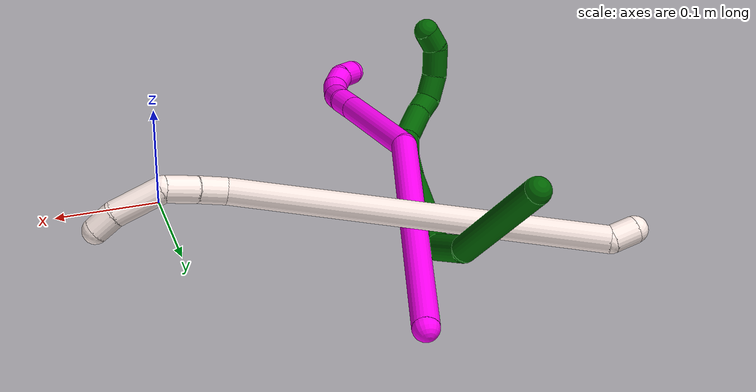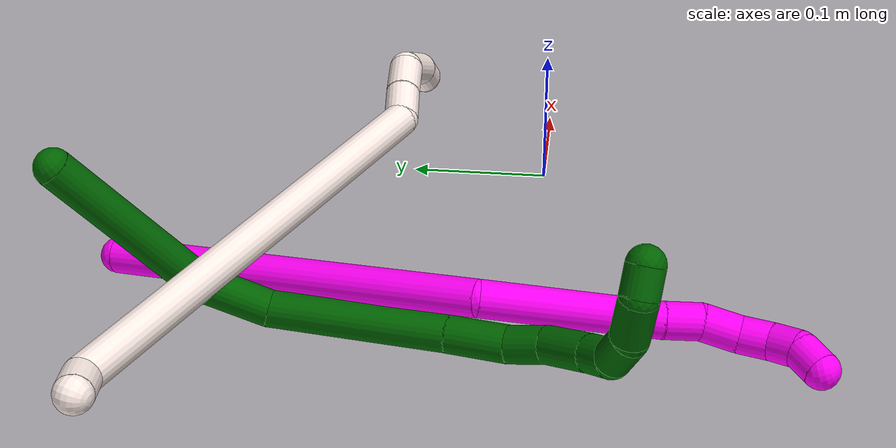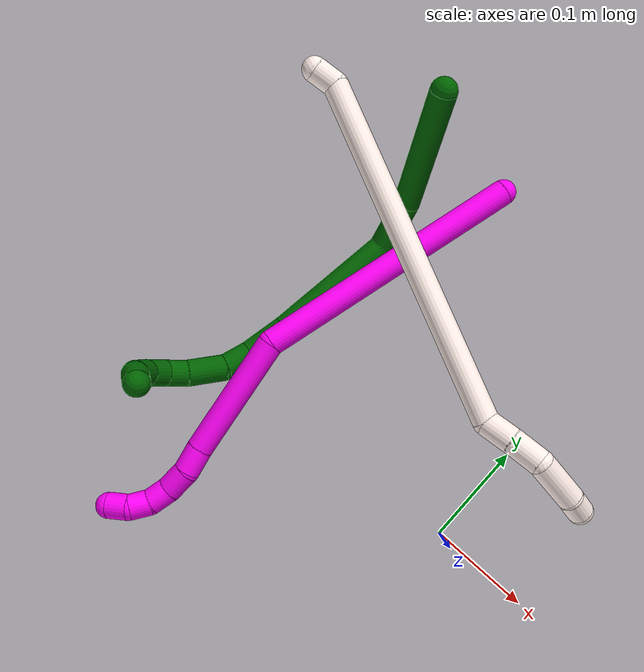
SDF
<sdf version="1.7">
 <world name="default">
  <model name="6">
   <static>0</static>
   <link name="6">
    <collision name="collision-cylinder-e_1_1_4">
     <pose>0.009903 -0.005653 -0.062704 3.05169 0.156016 2.09721</pose>
     <geometry><cylinder><radius>0.0125</radius><length>0.127464</length></cylinder></geometry>
     <surface>
      <friction><ode><mu>1.16</mu><mu2>1.16</mu2><slip1>0</slip1><slip2>0</slip2></ode></friction>
      <contact><ode><kp>1e+06</kp><kd>1</kd><max_vel>0</max_vel><min_depth>0.001</min_depth></ode></contact>
     </surface>
    </collision>
    <visual name="visual-cylinder-e_1_1_4">
     <pose>0.009903 -0.005653 -0.062704 3.05169 0.156016 2.09721</pose>
     <geometry><cylinder><radius>0.0125</radius><length>0.127464</length></cylinder></geometry>
     <material><ambient>0 0.392157 0.003922 1</ambient></material>
    </visual>
    <collision name="collision-cylinder-e_2_4_5">
     <pose>0.023388 -0.023616 -0.146737 2.61811 0.144441 0.527548</pose>
     <geometry><cylinder><radius>0.0125</radius><length>0.049773</length></cylinder></geometry>
     <surface>
      <friction><ode><mu>1.16</mu><mu2>1.16</mu2><slip1>0</slip1><slip2>0</slip2></ode></friction>
      <contact><ode><kp>1e+06</kp><kd>1</kd><max_vel>0</max_vel><min_depth>0.001</min_depth></ode></contact>
     </surface>
    </collision>
    <visual name="visual-cylinder-e_2_4_5">
     <pose>0.023388 -0.023616 -0.146737 2.61811 0.144441 0.527548</pose>
     <geometry><cylinder><radius>0.0125</radius><length>0.049773</length></cylinder></geometry>
     <material><ambient>0 0.392157 0.003922 1</ambient></material>
    </visual>
    <collision name="collision-cylinder-e_3_5_6">
     <pose>0.021951 -0.088953 -0.197711 2.08058 -0.082432 -0.140373</pose>
     <geometry><cylinder><radius>0.0125</radius><length>0.121913</length></cylinder></geometry>
     <surface>
      <friction><ode><mu>1.16</mu><mu2>1.16</mu2><slip1>0</slip1><slip2>0</slip2></ode></friction>
      <contact><ode><kp>1e+06</kp><kd>1</kd><max_vel>0</max_vel><min_depth>0.001</min_depth></ode></contact>
     </surface>
    </collision>
    <visual name="visual-cylinder-e_3_5_6">
     <pose>0.021951 -0.088953 -0.197711 2.08058 -0.082432 -0.140373</pose>
     <geometry><cylinder><radius>0.0125</radius><length>0.121913</length></cylinder></geometry>
     <material><ambient>0 0.392157 0.003922 1</ambient></material>
    </visual>
    <collision name="collision-cylinder-e_4_6_7">
     <pose>0.013961 -0.159894 -0.236774 2.0548 -0.145751 -0.240549</pose>
     <geometry><cylinder><radius>0.0125</radius><length>0.040915</length></cylinder></geometry>
     <surface>
      <friction><ode><mu>1.16</mu><mu2>1.16</mu2><slip1>0</slip1><slip2>0</slip2></ode></friction>
      <contact><ode><kp>1e+06</kp><kd>1</kd><max_vel>0</max_vel><min_depth>0.001</min_depth></ode></contact>
     </surface>
    </collision>
    <visual name="visual-cylinder-e_4_6_7">
     <pose>0.013961 -0.159894 -0.236774 2.0548 -0.145751 -0.240549</pose>
     <geometry><cylinder><radius>0.0125</radius><length>0.040915</length></cylinder></geometry>
     <material><ambient>0 0.392157 0.003922 1</ambient></material>
    </visual>
    <collision name="collision-cylinder-e_5_7_8">
     <pose>0.008433 -0.190715 -0.249016 1.78613 -0.191182 -0.237126</pose>
     <geometry><cylinder><radius>0.0125</radius><length>0.02691</length></cylinder></geometry>
     <surface>
      <friction><ode><mu>1.16</mu><mu2>1.16</mu2><slip1>0</slip1><slip2>0</slip2></ode></friction>
      <contact><ode><kp>1e+06</kp><kd>1</kd><max_vel>0</max_vel><min_depth>0.001</min_depth></ode></contact>
     </surface>
    </collision>
    <visual name="visual-cylinder-e_5_7_8">
     <pose>0.008433 -0.190715 -0.249016 1.78613 -0.191182 -0.237126</pose>
     <geometry><cylinder><radius>0.0125</radius><length>0.02691</length></cylinder></geometry>
     <material><ambient>0 0.392157 0.003922 1</ambient></material>
    </visual>
    <collision name="collision-cylinder-e_6_8_9">
     <pose>-0.003159 -0.219459 -0.252998 1.6439 -0.517231 -0.554577</pose>
     <geometry><cylinder><radius>0.0125</radius><length>0.036543</length></cylinder></geometry>
     <surface>
      <friction><ode><mu>1.16</mu><mu2>1.16</mu2><slip1>0</slip1><slip2>0</slip2></ode></friction>
      <contact><ode><kp>1e+06</kp><kd>1</kd><max_vel>0</max_vel><min_depth>0.001</min_depth></ode></contact>
     </surface>
    </collision>
    <visual name="visual-cylinder-e_6_8_9">
     <pose>-0.003159 -0.219459 -0.252998 1.6439 -0.517231 -0.554577</pose>
     <geometry><cylinder><radius>0.0125</radius><length>0.036543</length></cylinder></geometry>
     <material><ambient>0 0.392157 0.003922 1</ambient></material>
    </visual>
    <collision name="collision-cylinder-e_7_9_10">
     <pose>-0.018443 -0.243604 -0.253676 1.51281 -0.644256 -0.61021</pose>
     <geometry><cylinder><radius>0.0125</radius><length>0.020813</length></cylinder></geometry>
     <surface>
      <friction><ode><mu>1.16</mu><mu2>1.16</mu2><slip1>0</slip1><slip2>0</slip2></ode></friction>
      <contact><ode><kp>1e+06</kp><kd>1</kd><max_vel>0</max_vel><min_depth>0.001</min_depth></ode></contact>
     </surface>
    </collision>
    <visual name="visual-cylinder-e_7_9_10">
     <pose>-0.018443 -0.243604 -0.253676 1.51281 -0.644256 -0.61021</pose>
     <geometry><cylinder><radius>0.0125</radius><length>0.020813</length></cylinder></geometry>
     <material><ambient>0 0.392157 0.003922 1</ambient></material>
    </visual>
    <collision name="collision-cylinder-e_8_10_11">
     <pose>-0.027403 -0.262085 -0.245646 0.932558 -0.21072 -0.106348</pose>
     <geometry><cylinder><radius>0.0125</radius><length>0.02591</length></cylinder></geometry>
     <surface>
      <friction><ode><mu>1.16</mu><mu2>1.16</mu2><slip1>0</slip1><slip2>0</slip2></ode></friction>
      <contact><ode><kp>1e+06</kp><kd>1</kd><max_vel>0</max_vel><min_depth>0.001</min_depth></ode></contact>
     </surface>
    </collision>
    <visual name="visual-cylinder-e_8_10_11">
     <pose>-0.027403 -0.262085 -0.245646 0.932558 -0.21072 -0.106348</pose>
     <geometry><cylinder><radius>0.0125</radius><length>0.02591</length></cylinder></geometry>
     <material><ambient>0 0.392157 0.003922 1</ambient></material>
    </visual>
    <collision name="collision-cylinder-e_9_11_12">
     <pose>-0.02838 -0.281367 -0.226594 0.669667 0.117542 0.040938</pose>
     <geometry><cylinder><radius>0.0125</radius><length>0.02955</length></cylinder></geometry>
     <surface>
      <friction><ode><mu>1.16</mu><mu2>1.16</mu2><slip1>0</slip1><slip2>0</slip2></ode></friction>
      <contact><ode><kp>1e+06</kp><kd>1</kd><max_vel>0</max_vel><min_depth>0.001</min_depth></ode></contact>
     </surface>
    </collision>
    <visual name="visual-cylinder-e_9_11_12">
     <pose>-0.02838 -0.281367 -0.226594 0.669667 0.117542 0.040938</pose>
     <geometry><cylinder><radius>0.0125</radius><length>0.02955</length></cylinder></geometry>
     <material><ambient>0 0.392157 0.003922 1</ambient></material>
    </visual>
    <collision name="collision-cylinder-e_10_12_2">
     <pose>-0.020552 -0.295493 -0.208784 0.67205 0.647591 0.23337</pose>
     <geometry><cylinder><radius>0.0125</radius><length>0.020209</length></cylinder></geometry>
     <surface>
      <friction><ode><mu>1.16</mu><mu2>1.16</mu2><slip1>0</slip1><slip2>0</slip2></ode></friction>
      <contact><ode><kp>1e+06</kp><kd>1</kd><max_vel>0</max_vel><min_depth>0.001</min_depth></ode></contact>
     </surface>
    </collision>
    <visual name="visual-cylinder-e_10_12_2">
     <pose>-0.020552 -0.295493 -0.208784 0.67205 0.647591 0.23337</pose>
     <geometry><cylinder><radius>0.0125</radius><length>0.020209</length></cylinder></geometry>
     <material><ambient>0 0.392157 0.003922 1</ambient></material>
    </visual>
    <collision name="collision-sphere-2">
     <pose>-0.014456 -0.30051 -0.202477 0 -0 0</pose>
     <geometry><sphere><radius>0.0125</radius></sphere></geometry>
     <surface>
      <friction><ode><mu>1.16</mu><mu2>1.16</mu2><slip1>0</slip1><slip2>0</slip2></ode></friction>
      <contact><ode><kp>1e+06</kp><kd>1</kd><max_vel>0</max_vel><min_depth>0.001</min_depth></ode></contact>
     </surface>
    </collision>
    <visual name="visual-sphere-2">
     <pose>-0.014456 -0.30051 -0.202477 0 -0 0</pose>
     <geometry><sphere><radius>0.0125</radius></sphere></geometry>
     <material><ambient>0 0.392157 0.003922 1</ambient></material>
    </visual>
    <collision name="collision-sphere-12">
     <pose>-0.026647 -0.290475 -0.21509 0 -0 0</pose>
     <geometry><sphere><radius>0.0125</radius></sphere></geometry>
     <surface>
      <friction><ode><mu>1.16</mu><mu2>1.16</mu2><slip1>0</slip1><slip2>0</slip2></ode></friction>
      <contact><ode><kp>1e+06</kp><kd>1</kd><max_vel>0</max_vel><min_depth>0.001</min_depth></ode></contact>
     </surface>
    </collision>
    <visual name="visual-sphere-12">
     <pose>-0.026647 -0.290475 -0.21509 0 -0 0</pose>
     <geometry><sphere><radius>0.0125</radius></sphere></geometry>
     <material><ambient>0 0.392157 0.003922 1</ambient></material>
    </visual>
    <collision name="collision-sphere-11">
     <pose>-0.030113 -0.272259 -0.238099 0 -0 0</pose>
     <geometry><sphere><radius>0.0125</radius></sphere></geometry>
     <surface>
      <friction><ode><mu>1.16</mu><mu2>1.16</mu2><slip1>0</slip1><slip2>0</slip2></ode></friction>
      <contact><ode><kp>1e+06</kp><kd>1</kd><max_vel>0</max_vel><min_depth>0.001</min_depth></ode></contact>
     </surface>
    </collision>
    <visual name="visual-sphere-11">
     <pose>-0.030113 -0.272259 -0.238099 0 -0 0</pose>
     <geometry><sphere><radius>0.0125</radius></sphere></geometry>
     <material><ambient>0 0.392157 0.003922 1</ambient></material>
    </visual>
    <collision name="collision-sphere-10">
     <pose>-0.024694 -0.25191 -0.253194 0 -0 0</pose>
     <geometry><sphere><radius>0.0125</radius></sphere></geometry>
     <surface>
      <friction><ode><mu>1.16</mu><mu2>1.16</mu2><slip1>0</slip1><slip2>0</slip2></ode></friction>
      <contact><ode><kp>1e+06</kp><kd>1</kd><max_vel>0</max_vel><min_depth>0.001</min_depth></ode></contact>
     </surface>
    </collision>
    <visual name="visual-sphere-10">
     <pose>-0.024694 -0.25191 -0.253194 0 -0 0</pose>
     <geometry><sphere><radius>0.0125</radius></sphere></geometry>
     <material><ambient>0 0.392157 0.003922 1</ambient></material>
    </visual>
    <collision name="collision-sphere-9">
     <pose>-0.012193 -0.235298 -0.254158 0 -0 0</pose>
     <geometry><sphere><radius>0.0125</radius></sphere></geometry>
     <surface>
      <friction><ode><mu>1.16</mu><mu2>1.16</mu2><slip1>0</slip1><slip2>0</slip2></ode></friction>
      <contact><ode><kp>1e+06</kp><kd>1</kd><max_vel>0</max_vel><min_depth>0.001</min_depth></ode></contact>
     </surface>
    </collision>
    <visual name="visual-sphere-9">
     <pose>-0.012193 -0.235298 -0.254158 0 -0 0</pose>
     <geometry><sphere><radius>0.0125</radius></sphere></geometry>
     <material><ambient>0 0.392157 0.003922 1</ambient></material>
    </visual>
    <collision name="collision-sphere-4">
     <pose>0.019806 -0.011305 -0.125407 0 -0 0</pose>
     <geometry><sphere><radius>0.0125</radius></sphere></geometry>
     <surface>
      <friction><ode><mu>1.16</mu><mu2>1.16</mu2><slip1>0</slip1><slip2>0</slip2></ode></friction>
      <contact><ode><kp>1e+06</kp><kd>1</kd><max_vel>0</max_vel><min_depth>0.001</min_depth></ode></contact>
     </surface>
    </collision>
    <visual name="visual-sphere-4">
     <pose>0.019806 -0.011305 -0.125407 0 -0 0</pose>
     <geometry><sphere><radius>0.0125</radius></sphere></geometry>
     <material><ambient>0 0.392157 0.003922 1</ambient></material>
    </visual>
    <collision name="collision-sphere-1">
     <geometry><sphere><radius>0.0125</radius></sphere></geometry>
     <surface>
      <friction><ode><mu>1.16</mu><mu2>1.16</mu2><slip1>0</slip1><slip2>0</slip2></ode></friction>
      <contact><ode><kp>1e+06</kp><kd>1</kd><max_vel>0</max_vel><min_depth>0.001</min_depth></ode></contact>
     </surface>
    </collision>
    <visual name="visual-sphere-1">
     <geometry><sphere><radius>0.0125</radius></sphere></geometry>
     <material><ambient>0 0.392157 0.003922 1</ambient></material>
    </visual>
    <collision name="collision-sphere-8">
     <pose>0.005876 -0.20362 -0.251838 0 -0 0</pose>
     <geometry><sphere><radius>0.0125</radius></sphere></geometry>
     <surface>
      <friction><ode><mu>1.16</mu><mu2>1.16</mu2><slip1>0</slip1><slip2>0</slip2></ode></friction>
      <contact><ode><kp>1e+06</kp><kd>1</kd><max_vel>0</max_vel><min_depth>0.001</min_depth></ode></contact>
     </surface>
    </collision>
    <visual name="visual-sphere-8">
     <pose>0.005876 -0.20362 -0.251838 0 -0 0</pose>
     <geometry><sphere><radius>0.0125</radius></sphere></geometry>
     <material><ambient>0 0.392157 0.003922 1</ambient></material>
    </visual>
    <collision name="collision-sphere-5">
     <pose>0.02697 -0.035927 -0.168066 0 -0 0</pose>
     <geometry><sphere><radius>0.0125</radius></sphere></geometry>
     <surface>
      <friction><ode><mu>1.16</mu><mu2>1.16</mu2><slip1>0</slip1><slip2>0</slip2></ode></friction>
      <contact><ode><kp>1e+06</kp><kd>1</kd><max_vel>0</max_vel><min_depth>0.001</min_depth></ode></contact>
     </surface>
    </collision>
    <visual name="visual-sphere-5">
     <pose>0.02697 -0.035927 -0.168066 0 -0 0</pose>
     <geometry><sphere><radius>0.0125</radius></sphere></geometry>
     <material><ambient>0 0.392157 0.003922 1</ambient></material>
    </visual>
    <collision name="collision-sphere-6">
     <pose>0.016932 -0.141978 -0.227356 0 -0 0</pose>
     <geometry><sphere><radius>0.0125</radius></sphere></geometry>
     <surface>
      <friction><ode><mu>1.16</mu><mu2>1.16</mu2><slip1>0</slip1><slip2>0</slip2></ode></friction>
      <contact><ode><kp>1e+06</kp><kd>1</kd><max_vel>0</max_vel><min_depth>0.001</min_depth></ode></contact>
     </surface>
    </collision>
    <visual name="visual-sphere-6">
     <pose>0.016932 -0.141978 -0.227356 0 -0 0</pose>
     <geometry><sphere><radius>0.0125</radius></sphere></geometry>
     <material><ambient>0 0.392157 0.003922 1</ambient></material>
    </visual>
    <collision name="collision-sphere-7">
     <pose>0.01099 -0.17781 -0.246193 0 -0 0</pose>
     <geometry><sphere><radius>0.0125</radius></sphere></geometry>
     <surface>
      <friction><ode><mu>1.16</mu><mu2>1.16</mu2><slip1>0</slip1><slip2>0</slip2></ode></friction>
      <contact><ode><kp>1e+06</kp><kd>1</kd><max_vel>0</max_vel><min_depth>0.001</min_depth></ode></contact>
     </surface>
    </collision>
    <visual name="visual-sphere-7">
     <pose>0.01099 -0.17781 -0.246193 0 -0 0</pose>
     <geometry><sphere><radius>0.0125</radius></sphere></geometry>
     <material><ambient>0 0.392157 0.003922 1</ambient></material>
    </visual>
    <inertial>
     <pose>0.006875 -0.117162 -0.175186 0 -0 0</pose>
     <mass>0.5</mass>
     <inertia>
      <ixx>0.000227</ixx>
      <ixy>0</ixy>
      <ixz>0</ixz>
      <iyy>0.000119</iyy>
      <iyz>0</iyz>
      <izz>0.000149</izz>
     </inertia>
    </inertial>
   </link>
   <pose>-0.262286 0.28853 0.131803 -0.532383 -0.166778 -0.063749</pose>
  </model>
  <model name="10">
   <static>0</static>
   <link name="10">
    <collision name="collision-cylinder-e_1_1_4">
     <pose>-0.031545 -0.028207 0.126821 0.218852 -0.238195 -0.026292</pose>
     <geometry><cylinder><radius>0.0125</radius><length>0.267391</length></cylinder></geometry>
     <surface>
      <friction><ode><mu>1.16</mu><mu2>1.16</mu2><slip1>0</slip1><slip2>0</slip2></ode></friction>
      <contact><ode><kp>1e+06</kp><kd>1</kd><max_vel>0</max_vel><min_depth>0.001</min_depth></ode></contact>
     </surface>
    </collision>
    <visual name="visual-cylinder-e_1_1_4">
     <pose>-0.031545 -0.028207 0.126821 0.218852 -0.238195 -0.026292</pose>
     <geometry><cylinder><radius>0.0125</radius><length>0.267391</length></cylinder></geometry>
     <material><ambient>1 0 0.964706 1</ambient></material>
    </visual>
    <collision name="collision-cylinder-e_2_4_5">
     <pose>-0.060582 -0.089196 0.303699 0.579822 0.041895 0.012499</pose>
     <geometry><cylinder><radius>0.0125</radius><length>0.119775</length></cylinder></geometry>
     <surface>
      <friction><ode><mu>1.16</mu><mu2>1.16</mu2><slip1>0</slip1><slip2>0</slip2></ode></friction>
      <contact><ode><kp>1e+06</kp><kd>1</kd><max_vel>0</max_vel><min_depth>0.001</min_depth></ode></contact>
     </surface>
    </collision>
    <visual name="visual-cylinder-e_2_4_5">
     <pose>-0.060582 -0.089196 0.303699 0.579822 0.041895 0.012499</pose>
     <geometry><cylinder><radius>0.0125</radius><length>0.119775</length></cylinder></geometry>
     <material><ambient>1 0 0.964706 1</ambient></material>
    </visual>
    <collision name="collision-cylinder-e_3_5_6">
     <pose>-0.056531 -0.128626 0.364356 0.560069 0.122727 0.035336</pose>
     <geometry><cylinder><radius>0.0125</radius><length>0.025218</length></cylinder></geometry>
     <surface>
      <friction><ode><mu>1.16</mu><mu2>1.16</mu2><slip1>0</slip1><slip2>0</slip2></ode></friction>
      <contact><ode><kp>1e+06</kp><kd>1</kd><max_vel>0</max_vel><min_depth>0.001</min_depth></ode></contact>
     </surface>
    </collision>
    <visual name="visual-cylinder-e_3_5_6">
     <pose>-0.056531 -0.128626 0.364356 0.560069 0.122727 0.035336</pose>
     <geometry><cylinder><radius>0.0125</radius><length>0.025218</length></cylinder></geometry>
     <material><ambient>1 0 0.964706 1</ambient></material>
    </visual>
    <collision name="collision-cylinder-e_4_6_7">
     <pose>-0.057044 -0.142858 0.385072 0.643446 -0.161302 -0.053866</pose>
     <geometry><cylinder><radius>0.0125</radius><length>0.025615</length></cylinder></geometry>
     <surface>
      <friction><ode><mu>1.16</mu><mu2>1.16</mu2><slip1>0</slip1><slip2>0</slip2></ode></friction>
      <contact><ode><kp>1e+06</kp><kd>1</kd><max_vel>0</max_vel><min_depth>0.001</min_depth></ode></contact>
     </surface>
    </collision>
    <visual name="visual-cylinder-e_4_6_7">
     <pose>-0.057044 -0.142858 0.385072 0.643446 -0.161302 -0.053866</pose>
     <geometry><cylinder><radius>0.0125</radius><length>0.025615</length></cylinder></geometry>
     <material><ambient>1 0 0.964706 1</ambient></material>
    </visual>
    <collision name="collision-cylinder-e_5_7_8">
     <pose>-0.061937 -0.154026 0.404964 0.351287 -0.265889 -0.047459</pose>
     <geometry><cylinder><radius>0.0125</radius><length>0.021589</length></cylinder></geometry>
     <surface>
      <friction><ode><mu>1.16</mu><mu2>1.16</mu2><slip1>0</slip1><slip2>0</slip2></ode></friction>
      <contact><ode><kp>1e+06</kp><kd>1</kd><max_vel>0</max_vel><min_depth>0.001</min_depth></ode></contact>
     </surface>
    </collision>
    <visual name="visual-cylinder-e_5_7_8">
     <pose>-0.061937 -0.154026 0.404964 0.351287 -0.265889 -0.047459</pose>
     <geometry><cylinder><radius>0.0125</radius><length>0.021589</length></cylinder></geometry>
     <material><ambient>1 0 0.964706 1</ambient></material>
    </visual>
    <collision name="collision-cylinder-e_6_8_9">
     <pose>-0.06988 -0.157705 0.423351 0.01098 -0.535422 -0.003012</pose>
     <geometry><cylinder><radius>0.0125</radius><length>0.020017</length></cylinder></geometry>
     <surface>
      <friction><ode><mu>1.16</mu><mu2>1.16</mu2><slip1>0</slip1><slip2>0</slip2></ode></friction>
      <contact><ode><kp>1e+06</kp><kd>1</kd><max_vel>0</max_vel><min_depth>0.001</min_depth></ode></contact>
     </surface>
    </collision>
    <visual name="visual-cylinder-e_6_8_9">
     <pose>-0.06988 -0.157705 0.423351 0.01098 -0.535422 -0.003012</pose>
     <geometry><cylinder><radius>0.0125</radius><length>0.020017</length></cylinder></geometry>
     <material><ambient>1 0 0.964706 1</ambient></material>
    </visual>
    <collision name="collision-cylinder-e_7_9_2">
     <pose>-0.083348 -0.159313 0.437596 0.262245 -0.961275 -0.137313</pose>
     <geometry><cylinder><radius>0.0125</radius><length>0.020396</length></cylinder></geometry>
     <surface>
      <friction><ode><mu>1.16</mu><mu2>1.16</mu2><slip1>0</slip1><slip2>0</slip2></ode></friction>
      <contact><ode><kp>1e+06</kp><kd>1</kd><max_vel>0</max_vel><min_depth>0.001</min_depth></ode></contact>
     </surface>
    </collision>
    <visual name="visual-cylinder-e_7_9_2">
     <pose>-0.083348 -0.159313 0.437596 0.262245 -0.961275 -0.137313</pose>
     <geometry><cylinder><radius>0.0125</radius><length>0.020396</length></cylinder></geometry>
     <material><ambient>1 0 0.964706 1</ambient></material>
    </visual>
    <collision name="collision-sphere-2">
     <pose>-0.091709 -0.160826 0.443235 0 -0 0</pose>
     <geometry><sphere><radius>0.0125</radius></sphere></geometry>
     <surface>
      <friction><ode><mu>1.16</mu><mu2>1.16</mu2><slip1>0</slip1><slip2>0</slip2></ode></friction>
      <contact><ode><kp>1e+06</kp><kd>1</kd><max_vel>0</max_vel><min_depth>0.001</min_depth></ode></contact>
     </surface>
    </collision>
    <visual name="visual-sphere-2">
     <pose>-0.091709 -0.160826 0.443235 0 -0 0</pose>
     <geometry><sphere><radius>0.0125</radius></sphere></geometry>
     <material><ambient>1 0 0.964706 1</ambient></material>
    </visual>
    <collision name="collision-sphere-9">
     <pose>-0.074987 -0.157799 0.431958 0 -0 0</pose>
     <geometry><sphere><radius>0.0125</radius></sphere></geometry>
     <surface>
      <friction><ode><mu>1.16</mu><mu2>1.16</mu2><slip1>0</slip1><slip2>0</slip2></ode></friction>
      <contact><ode><kp>1e+06</kp><kd>1</kd><max_vel>0</max_vel><min_depth>0.001</min_depth></ode></contact>
     </surface>
    </collision>
    <visual name="visual-sphere-9">
     <pose>-0.074987 -0.157799 0.431958 0 -0 0</pose>
     <geometry><sphere><radius>0.0125</radius></sphere></geometry>
     <material><ambient>1 0 0.964706 1</ambient></material>
    </visual>
    <collision name="collision-sphere-4">
     <pose>-0.063091 -0.056414 0.253643 0 -0 0</pose>
     <geometry><sphere><radius>0.0125</radius></sphere></geometry>
     <surface>
      <friction><ode><mu>1.16</mu><mu2>1.16</mu2><slip1>0</slip1><slip2>0</slip2></ode></friction>
      <contact><ode><kp>1e+06</kp><kd>1</kd><max_vel>0</max_vel><min_depth>0.001</min_depth></ode></contact>
     </surface>
    </collision>
    <visual name="visual-sphere-4">
     <pose>-0.063091 -0.056414 0.253643 0 -0 0</pose>
     <geometry><sphere><radius>0.0125</radius></sphere></geometry>
     <material><ambient>1 0 0.964706 1</ambient></material>
    </visual>
    <collision name="collision-sphere-1">
     <geometry><sphere><radius>0.0125</radius></sphere></geometry>
     <surface>
      <friction><ode><mu>1.16</mu><mu2>1.16</mu2><slip1>0</slip1><slip2>0</slip2></ode></friction>
      <contact><ode><kp>1e+06</kp><kd>1</kd><max_vel>0</max_vel><min_depth>0.001</min_depth></ode></contact>
     </surface>
    </collision>
    <visual name="visual-sphere-1">
     <geometry><sphere><radius>0.0125</radius></sphere></geometry>
     <material><ambient>1 0 0.964706 1</ambient></material>
    </visual>
    <collision name="collision-sphere-8">
     <pose>-0.064774 -0.15761 0.414743 0 -0 0</pose>
     <geometry><sphere><radius>0.0125</radius></sphere></geometry>
     <surface>
      <friction><ode><mu>1.16</mu><mu2>1.16</mu2><slip1>0</slip1><slip2>0</slip2></ode></friction>
      <contact><ode><kp>1e+06</kp><kd>1</kd><max_vel>0</max_vel><min_depth>0.001</min_depth></ode></contact>
     </surface>
    </collision>
    <visual name="visual-sphere-8">
     <pose>-0.064774 -0.15761 0.414743 0 -0 0</pose>
     <geometry><sphere><radius>0.0125</radius></sphere></geometry>
     <material><ambient>1 0 0.964706 1</ambient></material>
    </visual>
    <collision name="collision-sphere-5">
     <pose>-0.058074 -0.121978 0.353754 0 -0 0</pose>
     <geometry><sphere><radius>0.0125</radius></sphere></geometry>
     <surface>
      <friction><ode><mu>1.16</mu><mu2>1.16</mu2><slip1>0</slip1><slip2>0</slip2></ode></friction>
      <contact><ode><kp>1e+06</kp><kd>1</kd><max_vel>0</max_vel><min_depth>0.001</min_depth></ode></contact>
     </surface>
    </collision>
    <visual name="visual-sphere-5">
     <pose>-0.058074 -0.121978 0.353754 0 -0 0</pose>
     <geometry><sphere><radius>0.0125</radius></sphere></geometry>
     <material><ambient>1 0 0.964706 1</ambient></material>
    </visual>
    <collision name="collision-sphere-6">
     <pose>-0.054987 -0.135274 0.374958 0 -0 0</pose>
     <geometry><sphere><radius>0.0125</radius></sphere></geometry>
     <surface>
      <friction><ode><mu>1.16</mu><mu2>1.16</mu2><slip1>0</slip1><slip2>0</slip2></ode></friction>
      <contact><ode><kp>1e+06</kp><kd>1</kd><max_vel>0</max_vel><min_depth>0.001</min_depth></ode></contact>
     </surface>
    </collision>
    <visual name="visual-sphere-6">
     <pose>-0.054987 -0.135274 0.374958 0 -0 0</pose>
     <geometry><sphere><radius>0.0125</radius></sphere></geometry>
     <material><ambient>1 0 0.964706 1</ambient></material>
    </visual>
    <collision name="collision-sphere-7">
     <pose>-0.059101 -0.150442 0.395185 0 -0 0</pose>
     <geometry><sphere><radius>0.0125</radius></sphere></geometry>
     <surface>
      <friction><ode><mu>1.16</mu><mu2>1.16</mu2><slip1>0</slip1><slip2>0</slip2></ode></friction>
      <contact><ode><kp>1e+06</kp><kd>1</kd><max_vel>0</max_vel><min_depth>0.001</min_depth></ode></contact>
     </surface>
    </collision>
    <visual name="visual-sphere-7">
     <pose>-0.059101 -0.150442 0.395185 0 -0 0</pose>
     <geometry><sphere><radius>0.0125</radius></sphere></geometry>
     <material><ambient>1 0 0.964706 1</ambient></material>
    </visual>
    <inertial>
     <pose>-0.046028 -0.06972 0.230961 0 -0 0</pose>
     <mass>0.5</mass>
     <inertia>
      <ixx>0.001667</ixx>
      <ixy>0</ixy>
      <ixz>0</ixz>
      <iyy>0.001647</iyy>
      <iyz>0</iyz>
      <izz>0.000832</izz>
     </inertia>
    </inertial>
   </link>
   <pose>-0.16926 0.286674 0.012479 1.15851 -0.321089 0.025688</pose>
  </model>
  <model name="11">
   <static>0</static>
   <link name="11">
    <collision name="collision-cylinder-e_1_1_4">
     <pose>0.010828 -0.000706 0.005136 0.136669 1.12428 0.086174</pose>
     <geometry><cylinder><radius>0.0125</radius><length>0.024011</length></cylinder></geometry>
     <surface>
      <friction><ode><mu>1.16</mu><mu2>1.16</mu2><slip1>0</slip1><slip2>0</slip2></ode></friction>
      <contact><ode><kp>1e+06</kp><kd>1</kd><max_vel>0</max_vel><min_depth>0.001</min_depth></ode></contact>
     </surface>
    </collision>
    <visual name="visual-cylinder-e_1_1_4">
     <pose>0.010828 -0.000706 0.005136 0.136669 1.12428 0.086174</pose>
     <geometry><cylinder><radius>0.0125</radius><length>0.024011</length></cylinder></geometry>
     <material><ambient>1 0.933333 0.909804 1</ambient></material>
    </visual>
    <collision name="collision-cylinder-e_2_4_5">
     <pose>0.181703 -0.061867 -0.005835 1.83117 1.19815 1.45286</pose>
     <geometry><cylinder><radius>0.0125</radius><length>0.34368</length></cylinder></geometry>
     <surface>
      <friction><ode><mu>1.16</mu><mu2>1.16</mu2><slip1>0</slip1><slip2>0</slip2></ode></friction>
      <contact><ode><kp>1e+06</kp><kd>1</kd><max_vel>0</max_vel><min_depth>0.001</min_depth></ode></contact>
     </surface>
    </collision>
    <visual name="visual-cylinder-e_2_4_5">
     <pose>0.181703 -0.061867 -0.005835 1.83117 1.19815 1.45286</pose>
     <geometry><cylinder><radius>0.0125</radius><length>0.34368</length></cylinder></geometry>
     <material><ambient>1 0.933333 0.909804 1</ambient></material>
    </visual>
    <collision name="collision-cylinder-e_3_5_6">
     <pose>0.352761 -0.129419 -0.016023 0.875715 0.872629 0.429855</pose>
     <geometry><cylinder><radius>0.0125</radius><length>0.028751</length></cylinder></geometry>
     <surface>
      <friction><ode><mu>1.16</mu><mu2>1.16</mu2><slip1>0</slip1><slip2>0</slip2></ode></friction>
      <contact><ode><kp>1e+06</kp><kd>1</kd><max_vel>0</max_vel><min_depth>0.001</min_depth></ode></contact>
     </surface>
    </collision>
    <visual name="visual-cylinder-e_3_5_6">
     <pose>0.352761 -0.129419 -0.016023 0.875715 0.872629 0.429855</pose>
     <geometry><cylinder><radius>0.0125</radius><length>0.028751</length></cylinder></geometry>
     <material><ambient>1 0.933333 0.909804 1</ambient></material>
    </visual>
    <collision name="collision-cylinder-e_4_6_7">
     <pose>0.376398 -0.143536 -0.004112 0.864143 0.939476 0.459892</pose>
     <geometry><cylinder><radius>0.0125</radius><length>0.031278</length></cylinder></geometry>
     <surface>
      <friction><ode><mu>1.16</mu><mu2>1.16</mu2><slip1>0</slip1><slip2>0</slip2></ode></friction>
      <contact><ode><kp>1e+06</kp><kd>1</kd><max_vel>0</max_vel><min_depth>0.001</min_depth></ode></contact>
     </surface>
    </collision>
    <visual name="visual-cylinder-e_4_6_7">
     <pose>0.376398 -0.143536 -0.004112 0.864143 0.939476 0.459892</pose>
     <geometry><cylinder><radius>0.0125</radius><length>0.031278</length></cylinder></geometry>
     <material><ambient>1 0.933333 0.909804 1</ambient></material>
    </visual>
    <collision name="collision-cylinder-e_5_7_8">
     <pose>0.412838 -0.14668 0.006569 -0.690841 1.32075 -0.545079</pose>
     <geometry><cylinder><radius>0.0125</radius><length>0.04916</length></cylinder></geometry>
     <surface>
      <friction><ode><mu>1.16</mu><mu2>1.16</mu2><slip1>0</slip1><slip2>0</slip2></ode></friction>
      <contact><ode><kp>1e+06</kp><kd>1</kd><max_vel>0</max_vel><min_depth>0.001</min_depth></ode></contact>
     </surface>
    </collision>
    <visual name="visual-cylinder-e_5_7_8">
     <pose>0.412838 -0.14668 0.006569 -0.690841 1.32075 -0.545079</pose>
     <geometry><cylinder><radius>0.0125</radius><length>0.04916</length></cylinder></geometry>
     <material><ambient>1 0.933333 0.909804 1</ambient></material>
    </visual>
    <collision name="collision-cylinder-e_6_8_2">
     <pose>0.447053 -0.138017 0.01286 -1.24769 1.11879 -0.84675</pose>
     <geometry><cylinder><radius>0.0125</radius><length>0.02312</length></cylinder></geometry>
     <surface>
      <friction><ode><mu>1.16</mu><mu2>1.16</mu2><slip1>0</slip1><slip2>0</slip2></ode></friction>
      <contact><ode><kp>1e+06</kp><kd>1</kd><max_vel>0</max_vel><min_depth>0.001</min_depth></ode></contact>
     </surface>
    </collision>
    <visual name="visual-cylinder-e_6_8_2">
     <pose>0.447053 -0.138017 0.01286 -1.24769 1.11879 -0.84675</pose>
     <geometry><cylinder><radius>0.0125</radius><length>0.02312</length></cylinder></geometry>
     <material><ambient>1 0.933333 0.909804 1</ambient></material>
    </visual>
    <collision name="collision-sphere-2">
     <pose>0.457452 -0.133229 0.014464 0 -0 0</pose>
     <geometry><sphere><radius>0.0125</radius></sphere></geometry>
     <surface>
      <friction><ode><mu>1.16</mu><mu2>1.16</mu2><slip1>0</slip1><slip2>0</slip2></ode></friction>
      <contact><ode><kp>1e+06</kp><kd>1</kd><max_vel>0</max_vel><min_depth>0.001</min_depth></ode></contact>
     </surface>
    </collision>
    <visual name="visual-sphere-2">
     <pose>0.457452 -0.133229 0.014464 0 -0 0</pose>
     <geometry><sphere><radius>0.0125</radius></sphere></geometry>
     <material><ambient>1 0.933333 0.909804 1</ambient></material>
    </visual>
    <collision name="collision-sphere-4">
     <pose>0.021657 -0.001413 0.010272 0 -0 0</pose>
     <geometry><sphere><radius>0.0125</radius></sphere></geometry>
     <surface>
      <friction><ode><mu>1.16</mu><mu2>1.16</mu2><slip1>0</slip1><slip2>0</slip2></ode></friction>
      <contact><ode><kp>1e+06</kp><kd>1</kd><max_vel>0</max_vel><min_depth>0.001</min_depth></ode></contact>
     </surface>
    </collision>
    <visual name="visual-sphere-4">
     <pose>0.021657 -0.001413 0.010272 0 -0 0</pose>
     <geometry><sphere><radius>0.0125</radius></sphere></geometry>
     <material><ambient>1 0.933333 0.909804 1</ambient></material>
    </visual>
    <collision name="collision-sphere-1">
     <geometry><sphere><radius>0.0125</radius></sphere></geometry>
     <surface>
      <friction><ode><mu>1.16</mu><mu2>1.16</mu2><slip1>0</slip1><slip2>0</slip2></ode></friction>
      <contact><ode><kp>1e+06</kp><kd>1</kd><max_vel>0</max_vel><min_depth>0.001</min_depth></ode></contact>
     </surface>
    </collision>
    <visual name="visual-sphere-1">
     <geometry><sphere><radius>0.0125</radius></sphere></geometry>
     <material><ambient>1 0.933333 0.909804 1</ambient></material>
    </visual>
    <collision name="collision-sphere-8">
     <pose>0.436653 -0.142805 0.011257 0 -0 0</pose>
     <geometry><sphere><radius>0.0125</radius></sphere></geometry>
     <surface>
      <friction><ode><mu>1.16</mu><mu2>1.16</mu2><slip1>0</slip1><slip2>0</slip2></ode></friction>
      <contact><ode><kp>1e+06</kp><kd>1</kd><max_vel>0</max_vel><min_depth>0.001</min_depth></ode></contact>
     </surface>
    </collision>
    <visual name="visual-sphere-8">
     <pose>0.436653 -0.142805 0.011257 0 -0 0</pose>
     <geometry><sphere><radius>0.0125</radius></sphere></geometry>
     <material><ambient>1 0.933333 0.909804 1</ambient></material>
    </visual>
    <collision name="collision-sphere-5">
     <pose>0.341749 -0.122322 -0.021941 0 -0 0</pose>
     <geometry><sphere><radius>0.0125</radius></sphere></geometry>
     <surface>
      <friction><ode><mu>1.16</mu><mu2>1.16</mu2><slip1>0</slip1><slip2>0</slip2></ode></friction>
      <contact><ode><kp>1e+06</kp><kd>1</kd><max_vel>0</max_vel><min_depth>0.001</min_depth></ode></contact>
     </surface>
    </collision>
    <visual name="visual-sphere-5">
     <pose>0.341749 -0.122322 -0.021941 0 -0 0</pose>
     <geometry><sphere><radius>0.0125</radius></sphere></geometry>
     <material><ambient>1 0.933333 0.909804 1</ambient></material>
    </visual>
    <collision name="collision-sphere-6">
     <pose>0.363773 -0.136516 -0.010105 0 -0 0</pose>
     <geometry><sphere><radius>0.0125</radius></sphere></geometry>
     <surface>
      <friction><ode><mu>1.16</mu><mu2>1.16</mu2><slip1>0</slip1><slip2>0</slip2></ode></friction>
      <contact><ode><kp>1e+06</kp><kd>1</kd><max_vel>0</max_vel><min_depth>0.001</min_depth></ode></contact>
     </surface>
    </collision>
    <visual name="visual-sphere-6">
     <pose>0.363773 -0.136516 -0.010105 0 -0 0</pose>
     <geometry><sphere><radius>0.0125</radius></sphere></geometry>
     <material><ambient>1 0.933333 0.909804 1</ambient></material>
    </visual>
    <collision name="collision-sphere-7">
     <pose>0.389022 -0.150556 0.001882 0 -0 0</pose>
     <geometry><sphere><radius>0.0125</radius></sphere></geometry>
     <surface>
      <friction><ode><mu>1.16</mu><mu2>1.16</mu2><slip1>0</slip1><slip2>0</slip2></ode></friction>
      <contact><ode><kp>1e+06</kp><kd>1</kd><max_vel>0</max_vel><min_depth>0.001</min_depth></ode></contact>
     </surface>
    </collision>
    <visual name="visual-sphere-7">
     <pose>0.389022 -0.150556 0.001882 0 -0 0</pose>
     <geometry><sphere><radius>0.0125</radius></sphere></geometry>
     <material><ambient>1 0.933333 0.909804 1</ambient></material>
    </visual>
    <inertial>
     <pose>0.230508 -0.079784 -0.003702 0 -0 0</pose>
     <mass>0.5</mass>
     <inertia>
      <ixx>0.001417</ixx>
      <ixy>0</ixy>
      <ixz>0</ixz>
      <iyy>0.004171</iyy>
      <iyz>0</iyz>
      <izz>-0.001987</izz>
     </inertia>
    </inertial>
   </link>
   <pose>-0.376794 0.248782 0.049361 -1.51557 0.296419 -0.328437</pose>
  </model>
 </world>
</sdf>
